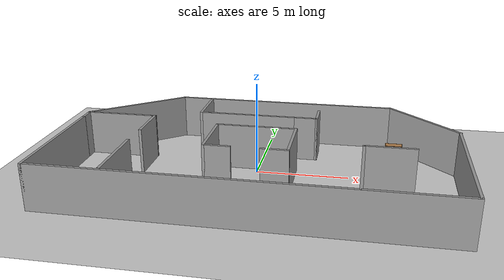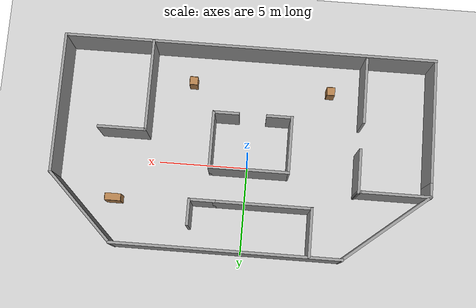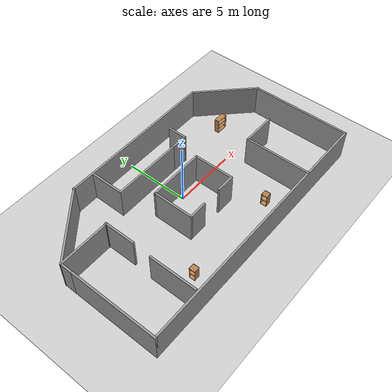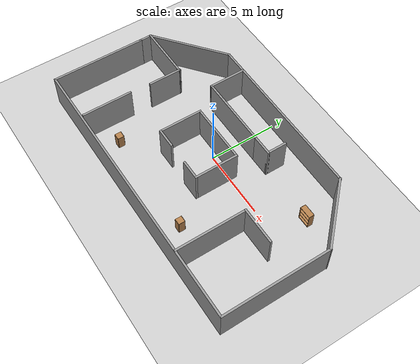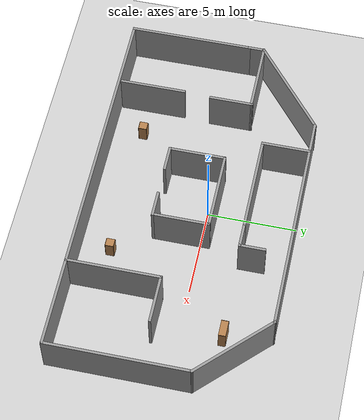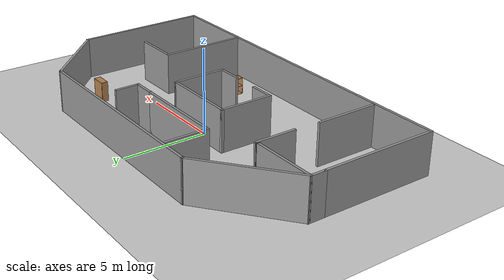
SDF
<sdf version="1.7">
 <world name="default">
  <light name="sun" type="directional">
   <pose>0 0 10 0 -0 0</pose>
   <diffuse>0.8 0.8 0.8 1</diffuse>
   <specular>0.2 0.2 0.2 1</specular>
   <attenuation>
    <range>1000</range>
    <constant>0.9</constant>
    <linear>0.01</linear>
    <quadratic>0.001</quadratic>
   </attenuation>
   <direction>-0.5 0.1 -0.9</direction>
   <spot><inner_angle>0</inner_angle><outer_angle>0</outer_angle><falloff>0</falloff></spot>
  </light>
  <model name="ground_plane">
   <static>1</static>
   <link name="link">
    <collision name="collision">
     <geometry><plane><normal>0 0 1</normal><size>100 100</size></plane></geometry>
     <surface>
      <contact><collide_bitmask>65535</collide_bitmask></contact>
      <friction><ode><mu>100</mu><mu2>50</mu2></ode></friction>
     </surface>
    </collision>
    <visual name="visual">
     <cast_shadows>0</cast_shadows>
     <geometry><plane><normal>0 0 1</normal><size>100 100</size></plane></geometry>
     <material>
      <script><uri>file://media/materials/scripts/gazebo.material</uri><name>Gazebo/Grey</name></script>
     </material>
    </visual>
   </link>
  </model>
  <gravity>0 0 -9.8</gravity>
  <magnetic_field>6e-06 2.3e-05 -4.2e-05</magnetic_field>
  <atmosphere type="adiabatic"/>
  <physics type="ode">
   <max_step_size>0.001</max_step_size>
   <real_time_factor>1</real_time_factor>
   <real_time_update_rate>1000</real_time_update_rate>
  </physics>
  <scene><ambient>0.4 0.4 0.4 1</ambient><background>0.7 0.7 0.7 1</background><shadows>1</shadows></scene>
  <spherical_coordinates>
   <surface_model>EARTH_WGS84</surface_model>
   <latitude_deg>0</latitude_deg>
   <longitude_deg>0</longitude_deg>
   <elevation>0</elevation>
   <heading_deg>0</heading_deg>
  </spherical_coordinates>
  <model name="layer1">
   <pose>0.2915 -0.74844 0 0 -0 0</pose>
   <link name="Wall_1">
    <collision name="Wall_1_Collision">
     <geometry><box><size>7 0.15 2.5</size></box></geometry>
     <pose>0 0 1.25 0 -0 0</pose>
    </collision>
    <visual name="Wall_1_Visual">
     <pose>0 0 1.25 0 -0 0</pose>
     <geometry><box><size>7 0.15 2.5</size></box></geometry>
     <material>
      <script><uri>file://media/materials/scripts/gazebo.material</uri><name>Gazebo/Grey</name></script>
      <ambient>1 1 1 1</ambient>
     </material>
     <meta><layer>0</layer></meta>
    </visual>
    <pose>-10.4253 -2.31866 0 0 -0 -1.5708</pose>
   </link>
   <link name="Wall_10">
    <collision name="Wall_10_Collision">
     <geometry><box><size>6.12276 0.15 2.5</size></box></geometry>
     <pose>0 0 1.25 0 -0 0</pose>
    </collision>
    <visual name="Wall_10_Visual">
     <pose>0 0 1.25 0 -0 0</pose>
     <geometry><box><size>6.12276 0.15 2.5</size></box></geometry>
     <material>
      <script><uri>file://media/materials/scripts/gazebo.material</uri><name>Gazebo/Grey</name></script>
      <ambient>1 1 1 1</ambient>
     </material>
     <meta><layer>0</layer></meta>
    </visual>
    <pose>-8.10342 3.83447 0 0 -0 -2.46146</pose>
   </link>
   <link name="Wall_12">
    <collision name="Wall_12_Collision">
     <geometry><box><size>3.25 0.15 2.5</size></box></geometry>
     <pose>0 0 1.25 0 -0 0</pose>
    </collision>
    <visual name="Wall_12_Visual">
     <pose>0 0 1.25 0 -0 0</pose>
     <geometry><box><size>3.25 0.15 2.5</size></box></geometry>
     <material>
      <script><uri>file://media/materials/scripts/gazebo.material</uri><name>Gazebo/Grey</name></script>
      <ambient>1 1 1 1</ambient>
     </material>
     <meta><layer>0</layer></meta>
    </visual>
    <pose>-2.59194 -0.34142 0 0 -0 -1.5708</pose>
   </link>
   <link name="Wall_13">
    <collision name="Wall_13_Collision">
     <geometry><box><size>1.5 0.15 2.5</size></box></geometry>
     <pose>0 0 1.25 0 -0 0</pose>
    </collision>
    <visual name="Wall_13_Visual">
     <pose>0 0 1.25 0 -0 0</pose>
     <geometry><box><size>1.5 0.15 2.5</size></box></geometry>
     <material>
      <script><uri>file://media/materials/scripts/gazebo.material</uri><name>Gazebo/Grey</name></script>
      <ambient>1 1 1 1</ambient>
     </material>
     <meta><layer>0</layer></meta>
    </visual>
    <pose>-1.91694 -1.89142 0 0 -0 0</pose>
   </link>
   <link name="Wall_15">
    <collision name="Wall_15_Collision">
     <geometry><box><size>4.5 0.15 2.5</size></box></geometry>
     <pose>0 0 1.25 0 -0 0</pose>
    </collision>
    <visual name="Wall_15_Visual">
     <pose>0 0 1.25 0 -0 0</pose>
     <geometry><box><size>4.5 0.15 2.5</size></box></geometry>
     <material>
      <script><uri>file://media/materials/scripts/gazebo.material</uri><name>Gazebo/Grey</name></script>
      <ambient>1 1 1 1</ambient>
     </material>
     <meta><layer>0</layer></meta>
    </visual>
    <pose>-0.416939 1.20858 0 0 -0 0</pose>
   </link>
   <link name="Wall_2">
    <collision name="Wall_2_Collision">
     <geometry><box><size>21 0.15 2.5</size></box></geometry>
     <pose>0 0 1.25 0 -0 0</pose>
    </collision>
    <visual name="Wall_2_Visual">
     <pose>0 0 1.25 0 -0 0</pose>
     <geometry><box><size>21 0.15 2.5</size></box></geometry>
     <material>
      <script><uri>file://media/materials/scripts/gazebo.material</uri><name>Gazebo/Grey</name></script>
      <ambient>1 1 1 1</ambient>
     </material>
     <meta><layer>0</layer></meta>
    </visual>
    <pose>-0.000294 -5.74366 0 0 -0 0</pose>
   </link>
   <link name="Wall_22">
    <collision name="Wall_22_Collision">
     <geometry><box><size>3.25 0.15 2.5</size></box></geometry>
     <pose>0 0 1.25 0 -0 0</pose>
    </collision>
    <visual name="Wall_22_Visual">
     <pose>0 0 1.25 0 -0 0</pose>
     <geometry><box><size>3.25 0.15 2.5</size></box></geometry>
     <material>
      <script><uri>file://media/materials/scripts/gazebo.material</uri><name>Gazebo/Grey</name></script>
      <ambient>1 1 1 1</ambient>
     </material>
     <meta><layer>0</layer></meta>
    </visual>
    <pose>1.75806 -0.34142 0 0 -0 -1.5708</pose>
   </link>
   <link name="Wall_23">
    <collision name="Wall_23_Collision">
     <geometry><box><size>1.5 0.15 2.5</size></box></geometry>
     <pose>0 0 1.25 0 -0 0</pose>
    </collision>
    <visual name="Wall_23_Visual">
     <pose>0 0 1.25 0 -0 0</pose>
     <geometry><box><size>1.5 0.15 2.5</size></box></geometry>
     <material>
      <script><uri>file://media/materials/scripts/gazebo.material</uri><name>Gazebo/Grey</name></script>
      <ambient>1 1 1 1</ambient>
     </material>
     <meta><layer>0</layer></meta>
    </visual>
    <pose>1.08306 -1.89142 0 0 -0 3.14159</pose>
   </link>
   <link name="Wall_25">
    <collision name="Wall_25_Collision">
     <geometry><box><size>4 0.15 2.5</size></box></geometry>
     <pose>0 0 1.25 0 -0 0</pose>
    </collision>
    <visual name="Wall_25_Visual">
     <pose>0 0 1.25 0 -0 0</pose>
     <geometry><box><size>4 0.15 2.5</size></box></geometry>
     <material>
      <script><uri>file://media/materials/scripts/gazebo.material</uri><name>Gazebo/Grey</name></script>
      <ambient>1 1 1 1</ambient>
     </material>
     <meta><layer>0</layer></meta>
    </visual>
    <pose>-8.50029 1.95635 0 0 -0 0</pose>
   </link>
   <link name="Wall_26">
    <collision name="Wall_26_Collision">
     <geometry><box><size>0.25 0.15 2.5</size></box></geometry>
     <pose>0 0 1.25 0 -0 0</pose>
    </collision>
    <visual name="Wall_26_Visual">
     <pose>0 0 1.25 0 -0 0</pose>
     <geometry><box><size>0.25 0.15 2.5</size></box></geometry>
     <material>
      <script><uri>file://media/materials/scripts/gazebo.material</uri><name>Gazebo/Grey</name></script>
      <ambient>1 1 1 1</ambient>
     </material>
     <meta><layer>0</layer></meta>
    </visual>
    <pose>-6.527 1.96929 0 0 -0 0.261799</pose>
   </link>
   <link name="Wall_27">
    <collision name="Wall_27_Collision">
     <geometry><box><size>2.5 0.15 2.5</size></box></geometry>
     <pose>0 0 1.25 0 -0 0</pose>
    </collision>
    <visual name="Wall_27_Visual">
     <pose>0 0 1.25 0 -0 0</pose>
     <geometry><box><size>2.5 0.15 2.5</size></box></geometry>
     <material>
      <script><uri>file://media/materials/scripts/gazebo.material</uri><name>Gazebo/Grey</name></script>
      <ambient>1 1 1 1</ambient>
     </material>
     <meta><layer>0</layer></meta>
    </visual>
    <pose>-6.4787 0.807227 0 0 -0 -1.5708</pose>
   </link>
   <link name="Wall_29">
    <collision name="Wall_29_Collision">
     <geometry><box><size>3.75 0.15 2.5</size></box></geometry>
     <pose>0 0 1.25 0 -0 0</pose>
    </collision>
    <visual name="Wall_29_Visual">
     <pose>0 0 1.25 0 -0 0</pose>
     <geometry><box><size>3.75 0.15 2.5</size></box></geometry>
     <material>
      <script><uri>file://media/materials/scripts/gazebo.material</uri><name>Gazebo/Grey</name></script>
      <ambient>1 1 1 1</ambient>
     </material>
     <meta><layer>0</layer></meta>
    </visual>
    <pose>-6.57443 -3.74958 0 0 -0 1.5708</pose>
   </link>
   <link name="Wall_3">
    <collision name="Wall_3_Collision">
     <geometry><box><size>8 0.15 2.5</size></box></geometry>
     <pose>0 0 1.25 0 -0 0</pose>
    </collision>
    <visual name="Wall_3_Visual">
     <pose>0 0 1.25 0 -0 0</pose>
     <geometry><box><size>8 0.15 2.5</size></box></geometry>
     <material>
      <script><uri>file://media/materials/scripts/gazebo.material</uri><name>Gazebo/Grey</name></script>
      <ambient>1 1 1 1</ambient>
     </material>
     <meta><layer>0</layer></meta>
    </visual>
    <pose>10.4247 -1.81865 0 0 -0 1.5708</pose>
   </link>
   <link name="Wall_31">
    <collision name="Wall_31_Collision">
     <geometry><box><size>5.25 0.15 2.5</size></box></geometry>
     <pose>0 0 1.25 0 -0 0</pose>
    </collision>
    <visual name="Wall_31_Visual">
     <pose>0 0 1.25 0 -0 0</pose>
     <geometry><box><size>5.25 0.15 2.5</size></box></geometry>
     <material>
      <script><uri>file://media/materials/scripts/gazebo.material</uri><name>Gazebo/Grey</name></script>
      <ambient>1 1 1 1</ambient>
     </material>
     <meta><layer>0</layer></meta>
    </visual>
    <pose>5.45349 -3.16049 0 0 -0 1.5708</pose>
   </link>
   <link name="Wall_32">
    <collision name="Wall_32_Collision">
     <geometry><box><size>2.75 0.15 2.5</size></box></geometry>
     <pose>0 0 1.25 0 -0 0</pose>
    </collision>
    <visual name="Wall_32_Visual">
     <pose>0 0 1.25 0 -0 0</pose>
     <geometry><box><size>2.75 0.15 2.5</size></box></geometry>
     <material>
      <script><uri>file://media/materials/scripts/gazebo.material</uri><name>Gazebo/Grey</name></script>
      <ambient>1 1 1 1</ambient>
     </material>
     <meta><layer>0</layer></meta>
    </visual>
    <pose>6.75349 -0.610489 0 0 -0 0</pose>
   </link>
   <link name="Wall_35">
    <collision name="Wall_35_Collision">
     <geometry><box><size>2.75 0.15 2.5</size></box></geometry>
     <pose>0 0 1.25 0 -0 0</pose>
    </collision>
    <visual name="Wall_35_Visual">
     <pose>0 0 1.25 0 -0 0</pose>
     <geometry><box><size>2.75 0.15 2.5</size></box></geometry>
     <material>
      <script><uri>file://media/materials/scripts/gazebo.material</uri><name>Gazebo/Grey</name></script>
      <ambient>1 1 1 1</ambient>
     </material>
     <meta><layer>0</layer></meta>
    </visual>
    <pose>-3.99989 4.37379 0 0 -0 -1.5708</pose>
   </link>
   <link name="Wall_36">
    <collision name="Wall_36_Collision">
     <geometry><box><size>5.5 0.15 2.5</size></box></geometry>
     <pose>0 0 1.25 0 -0 0</pose>
    </collision>
    <visual name="Wall_36_Visual">
     <pose>0 0 1.25 0 -0 0</pose>
     <geometry><box><size>5.5 0.15 2.5</size></box></geometry>
     <material>
      <script><uri>file://media/materials/scripts/gazebo.material</uri><name>Gazebo/Grey</name></script>
      <ambient>1 1 1 1</ambient>
     </material>
     <meta><layer>0</layer></meta>
    </visual>
    <pose>-1.32489 3.07379 0 0 -0 0</pose>
   </link>
   <link name="Wall_37">
    <collision name="Wall_37_Collision">
     <geometry><box><size>1.5 0.15 2.5</size></box></geometry>
     <pose>0 0 1.25 0 -0 0</pose>
    </collision>
    <visual name="Wall_37_Visual">
     <pose>0 0 1.25 0 -0 0</pose>
     <geometry><box><size>1.5 0.15 2.5</size></box></geometry>
     <material>
      <script><uri>file://media/materials/scripts/gazebo.material</uri><name>Gazebo/Grey</name></script>
      <ambient>1 1 1 1</ambient>
     </material>
     <meta><layer>0</layer></meta>
    </visual>
    <pose>2.02511 3.07379 0 0 -0 0</pose>
   </link>
   <link name="Wall_38">
    <collision name="Wall_38_Collision">
     <geometry><box><size>1.5 0.15 2.5</size></box></geometry>
     <pose>0 0 1.25 0 -0 0</pose>
    </collision>
    <visual name="Wall_38_Visual">
     <pose>0 0 1.25 0 -0 0</pose>
     <geometry><box><size>1.5 0.15 2.5</size></box></geometry>
     <material>
      <script><uri>file://media/materials/scripts/gazebo.material</uri><name>Gazebo/Grey</name></script>
      <ambient>1 1 1 1</ambient>
     </material>
     <meta><layer>0</layer></meta>
    </visual>
    <pose>2.70011 3.74879 0 0 -0 1.5708</pose>
   </link>
   <link name="Wall_5">
    <collision name="Wall_5_Collision">
     <geometry><box><size>5.25 0.15 2.5</size></box></geometry>
     <pose>0 0 1.25 0 -0 0</pose>
    </collision>
    <visual name="Wall_5_Visual">
     <pose>0 0 1.25 0 -0 0</pose>
     <geometry><box><size>5.25 0.15 2.5</size></box></geometry>
     <material>
      <script><uri>file://media/materials/scripts/gazebo.material</uri><name>Gazebo/Grey</name></script>
      <ambient>1 1 1 1</ambient>
     </material>
     <meta><layer>0</layer></meta>
    </visual>
    <pose>8.62158 3.90947 0 0 -0 2.35619</pose>
   </link>
   <link name="Wall_6">
    <collision name="Wall_6_Collision">
     <geometry><box><size>12.75 0.15 2.5</size></box></geometry>
     <pose>0 0 1.25 0 -0 0</pose>
    </collision>
    <visual name="Wall_6_Visual">
     <pose>0 0 1.25 0 -0 0</pose>
     <geometry><box><size>12.75 0.15 2.5</size></box></geometry>
     <material>
      <script><uri>file://media/materials/scripts/gazebo.material</uri><name>Gazebo/Grey</name></script>
      <ambient>1 1 1 1</ambient>
     </material>
     <meta><layer>0</layer></meta>
    </visual>
    <pose>0.518462 5.71259 0 0 -0 3.14159</pose>
   </link>
   <link name="Wall_8">
    <collision name="Wall_8_Collision">
     <geometry><box><size>1 0.15 2.5</size></box></geometry>
     <pose>0 0 1.25 0 -0 0</pose>
    </collision>
    <visual name="Wall_8_Visual">
     <pose>0 0 1.25 0 -0 0</pose>
     <geometry><box><size>1 0.15 2.5</size></box></geometry>
     <material>
      <script><uri>file://media/materials/scripts/gazebo.material</uri><name>Gazebo/Grey</name></script>
      <ambient>1 1 1 1</ambient>
     </material>
     <meta><layer>0</layer></meta>
    </visual>
    <pose>-10.4253 1.53134 0 0 -0 1.5708</pose>
   </link>
   <static>1</static>
  </model>
  <model name="bookshelf">
   <static>1</static>
   <link name="link">
    <inertial><mass>1</mass></inertial>
    <collision name="back">
     <pose>0 0.005 0.6 0 -0 0</pose>
     <geometry><box><size>0.9 0.01 1.2</size></box></geometry>
    </collision>
    <visual name="visual1">
     <pose>0 0.005 0.6 0 -0 0</pose>
     <geometry><box><size>0.9 0.01 1.2</size></box></geometry>
     <material>
      <script><uri>file://media/materials/scripts/gazebo.material</uri><name>Gazebo/Wood</name></script>
     </material>
    </visual>
    <collision name="left_side">
     <pose>0.45 -0.195 0.6 0 -0 0</pose>
     <geometry><box><size>0.02 0.4 1.2</size></box></geometry>
    </collision>
    <visual name="visual2">
     <pose>0.45 -0.195 0.6 0 -0 0</pose>
     <geometry><box><size>0.02 0.4 1.2</size></box></geometry>
     <material>
      <script><uri>file://media/materials/scripts/gazebo.material</uri><name>Gazebo/Wood</name></script>
     </material>
    </visual>
    <collision name="right_side">
     <pose>-0.45 -0.195 0.6 0 -0 0</pose>
     <geometry><box><size>0.02 0.4 1.2</size></box></geometry>
    </collision>
    <visual name="visual3">
     <pose>-0.45 -0.195 0.6 0 -0 0</pose>
     <geometry><box><size>0.02 0.4 1.2</size></box></geometry>
     <material>
      <script><uri>file://media/materials/scripts/gazebo.material</uri><name>Gazebo/Wood</name></script>
     </material>
    </visual>
    <collision name="bottom">
     <pose>0 -0.195 0.03 0 -0 0</pose>
     <geometry><box><size>0.88 0.4 0.06</size></box></geometry>
    </collision>
    <visual name="visual4">
     <pose>0 -0.195 0.03 0 -0 0</pose>
     <geometry><box><size>0.88 0.4 0.06</size></box></geometry>
     <material>
      <script><uri>file://media/materials/scripts/gazebo.material</uri><name>Gazebo/Wood</name></script>
     </material>
    </visual>
    <collision name="top">
     <pose>0 -0.195 1.19 0 -0 0</pose>
     <geometry><box><size>0.88 0.4 0.02</size></box></geometry>
    </collision>
    <visual name="visual5">
     <pose>0 -0.195 1.19 0 -0 0</pose>
     <geometry><box><size>0.88 0.4 0.02</size></box></geometry>
     <material>
      <script><uri>file://media/materials/scripts/gazebo.material</uri><name>Gazebo/Wood</name></script>
     </material>
    </visual>
    <collision name="low_shelf">
     <pose>0 -0.195 0.43 0 -0 0</pose>
     <geometry><box><size>0.88 0.4 0.02</size></box></geometry>
    </collision>
    <visual name="visual6">
     <pose>0 -0.195 0.43 0 -0 0</pose>
     <geometry><box><size>0.88 0.4 0.02</size></box></geometry>
     <material>
      <script><uri>file://media/materials/scripts/gazebo.material</uri><name>Gazebo/Wood</name></script>
     </material>
    </visual>
    <collision name="high_shelf">
     <pose>0 -0.195 0.8 0 -0 0</pose>
     <geometry><box><size>0.88 0.4 0.02</size></box></geometry>
    </collision>
    <visual name="visual7">
     <pose>0 -0.195 0.8 0 -0 0</pose>
     <geometry><box><size>0.88 0.4 0.02</size></box></geometry>
     <material>
      <script><uri>file://media/materials/scripts/gazebo.material</uri><name>Gazebo/Wood</name></script>
     </material>
    </visual>
   </link>
   <pose>7.35906 2.54021 0 0 -0 0</pose>
  </model>
  <model name="cabinet">
   <static>1</static>
   <link name="cabinet_bottom_plate">
    <inertial>
     <pose>0 0 -1 0 -0 0</pose>
     <inertia><ixx>2.05</ixx><ixy>0</ixy><ixz>0</ixz><iyy>2.05</iyy><iyz>0</iyz><izz>2.05</izz></inertia>
     <mass>25</mass>
    </inertial>
    <collision name="cabinet_bottom_plate_geom">
     <pose>0 0 0.01 0 -0 0</pose>
     <geometry><box><size>0.45 0.45 0.02</size></box></geometry>
    </collision>
    <visual name="cabinet_bottom_plate_geom_visual">
     <pose>0 0 0.01 0 -0 0</pose>
     <geometry><box><size>0.45 0.45 0.02</size></box></geometry>
     <material>
      <script><uri>file://media/materials/scripts/gazebo.material</uri><name>Gazebo/Wood</name></script>
     </material>
    </visual>
    <collision name="cabinet_bottom_plate_geom_cabinet_back_plate">
     <pose>0.235 0 0.51 0 -0 0</pose>
     <geometry><box><size>0.02 0.45 1.02</size></box></geometry>
    </collision>
    <visual name="cabinet_bottom_plate_geom_cabinet_back_plate_visual">
     <pose>0.235 0 0.51 0 -0 0</pose>
     <geometry><box><size>0.02 0.45 1.02</size></box></geometry>
     <material>
      <script><uri>file://media/materials/scripts/gazebo.material</uri><name>Gazebo/Wood</name></script>
     </material>
    </visual>
    <collision name="cabinet_bottom_plate_geom_cabinet_left_plate">
     <pose>0 0.235 0.51 0 -0 0</pose>
     <geometry><box><size>0.45 0.02 1.02</size></box></geometry>
    </collision>
    <visual name="cabinet_bottom_plate_geom_cabinet_left_plate_visual">
     <pose>0 0.235 0.51 0 -0 0</pose>
     <geometry><box><size>0.45 0.02 1.02</size></box></geometry>
     <material>
      <script><uri>file://media/materials/scripts/gazebo.material</uri><name>Gazebo/Wood</name></script>
     </material>
    </visual>
    <collision name="cabinet_bottom_plate_geom_cabinet_middle_plate">
     <pose>0 0 0.51 0 -0 0</pose>
     <geometry><box><size>0.45 0.45 0.02</size></box></geometry>
    </collision>
    <visual name="cabinet_bottom_plate_geom_cabinet_middle_plate_visual">
     <pose>0 0 0.51 0 -0 0</pose>
     <geometry><box><size>0.45 0.45 0.02</size></box></geometry>
     <material>
      <script><uri>file://media/materials/scripts/gazebo.material</uri><name>Gazebo/Wood</name></script>
     </material>
    </visual>
    <collision name="cabinet_bottom_plate_geom_cabinet_right_plate">
     <pose>0 -0.235 0.51 0 -0 0</pose>
     <geometry><box><size>0.45 0.02 1.02</size></box></geometry>
    </collision>
    <visual name="cabinet_bottom_plate_geom_cabinet_right_plate_visual">
     <pose>0 -0.235 0.51 0 -0 0</pose>
     <geometry><box><size>0.45 0.02 1.02</size></box></geometry>
     <material>
      <script><uri>file://media/materials/scripts/gazebo.material</uri><name>Gazebo/Wood</name></script>
     </material>
    </visual>
    <collision name="cabinet_bottom_plate_geom_cabinet_top_plate">
     <pose>0 0 1.01 0 -0 0</pose>
     <geometry><box><size>0.45 0.45 0.02</size></box></geometry>
    </collision>
    <visual name="cabinet_bottom_plate_geom_cabinet_top_plate_visual">
     <pose>0 0 1.01 0 -0 0</pose>
     <geometry><box><size>0.45 0.45 0.02</size></box></geometry>
     <material>
      <script><uri>file://media/materials/scripts/gazebo.material</uri><name>Gazebo/Wood</name></script>
     </material>
    </visual>
   </link>
   <pose>3.4185 -4.73463 0 0 -0 0</pose>
  </model>
  <model name="cabinet_0">
   <static>1</static>
   <link name="cabinet_bottom_plate">
    <inertial>
     <pose>0 0 -1 0 -0 0</pose>
     <inertia><ixx>2.05</ixx><ixy>0</ixy><ixz>0</ixz><iyy>2.05</iyy><iyz>0</iyz><izz>2.05</izz></inertia>
     <mass>25</mass>
    </inertial>
    <collision name="cabinet_bottom_plate_geom">
     <pose>0 0 0.01 0 -0 0</pose>
     <geometry><box><size>0.45 0.45 0.02</size></box></geometry>
    </collision>
    <visual name="cabinet_bottom_plate_geom_visual">
     <pose>0 0 0.01 0 -0 0</pose>
     <geometry><box><size>0.45 0.45 0.02</size></box></geometry>
     <material>
      <script><uri>file://media/materials/scripts/gazebo.material</uri><name>Gazebo/Wood</name></script>
     </material>
    </visual>
    <collision name="cabinet_bottom_plate_geom_cabinet_back_plate">
     <pose>0.235 0 0.51 0 -0 0</pose>
     <geometry><box><size>0.02 0.45 1.02</size></box></geometry>
    </collision>
    <visual name="cabinet_bottom_plate_geom_cabinet_back_plate_visual">
     <pose>0.235 0 0.51 0 -0 0</pose>
     <geometry><box><size>0.02 0.45 1.02</size></box></geometry>
     <material>
      <script><uri>file://media/materials/scripts/gazebo.material</uri><name>Gazebo/Wood</name></script>
     </material>
    </visual>
    <collision name="cabinet_bottom_plate_geom_cabinet_left_plate">
     <pose>0 0.235 0.51 0 -0 0</pose>
     <geometry><box><size>0.45 0.02 1.02</size></box></geometry>
    </collision>
    <visual name="cabinet_bottom_plate_geom_cabinet_left_plate_visual">
     <pose>0 0.235 0.51 0 -0 0</pose>
     <geometry><box><size>0.45 0.02 1.02</size></box></geometry>
     <material>
      <script><uri>file://media/materials/scripts/gazebo.material</uri><name>Gazebo/Wood</name></script>
     </material>
    </visual>
    <collision name="cabinet_bottom_plate_geom_cabinet_middle_plate">
     <pose>0 0 0.51 0 -0 0</pose>
     <geometry><box><size>0.45 0.45 0.02</size></box></geometry>
    </collision>
    <visual name="cabinet_bottom_plate_geom_cabinet_middle_plate_visual">
     <pose>0 0 0.51 0 -0 0</pose>
     <geometry><box><size>0.45 0.45 0.02</size></box></geometry>
     <material>
      <script><uri>file://media/materials/scripts/gazebo.material</uri><name>Gazebo/Wood</name></script>
     </material>
    </visual>
    <collision name="cabinet_bottom_plate_geom_cabinet_right_plate">
     <pose>0 -0.235 0.51 0 -0 0</pose>
     <geometry><box><size>0.45 0.02 1.02</size></box></geometry>
    </collision>
    <visual name="cabinet_bottom_plate_geom_cabinet_right_plate_visual">
     <pose>0 -0.235 0.51 0 -0 0</pose>
     <geometry><box><size>0.45 0.02 1.02</size></box></geometry>
     <material>
      <script><uri>file://media/materials/scripts/gazebo.material</uri><name>Gazebo/Wood</name></script>
     </material>
    </visual>
    <collision name="cabinet_bottom_plate_geom_cabinet_top_plate">
     <pose>0 0 1.01 0 -0 0</pose>
     <geometry><box><size>0.45 0.45 0.02</size></box></geometry>
    </collision>
    <visual name="cabinet_bottom_plate_geom_cabinet_top_plate_visual">
     <pose>0 0 1.01 0 -0 0</pose>
     <geometry><box><size>0.45 0.45 0.02</size></box></geometry>
     <material>
      <script><uri>file://media/materials/scripts/gazebo.material</uri><name>Gazebo/Wood</name></script>
     </material>
    </visual>
   </link>
   <pose>-4.49626 -4.70088 0 0 -0 0</pose>
  </model>
 </world>
</sdf>
